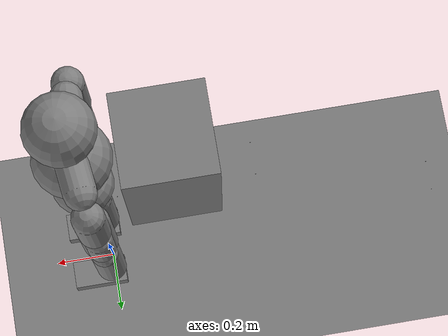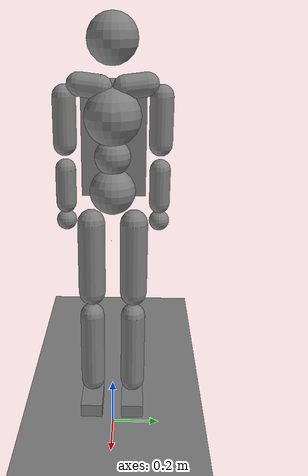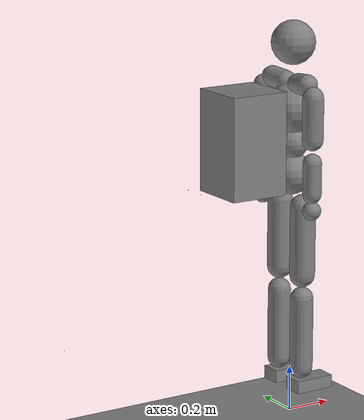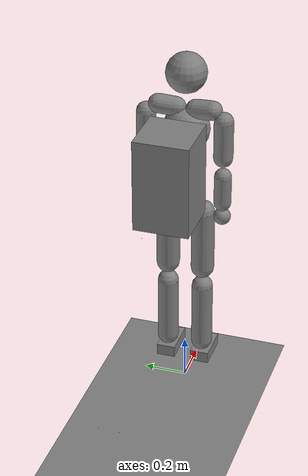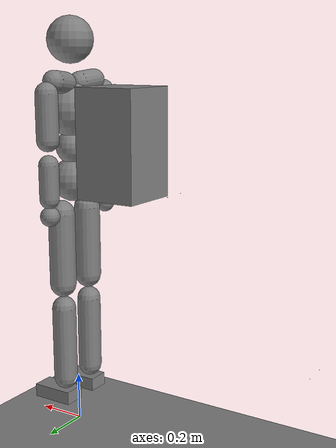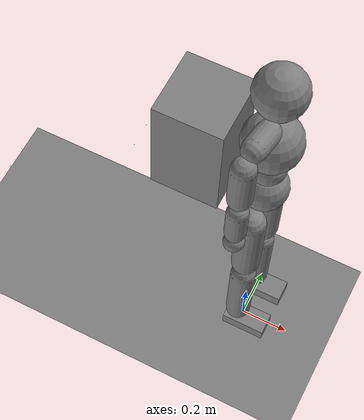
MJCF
<!-- 背后腿状SRL 在3的基础上增长 带角度(45) -->
<mujoco model="humanoid">

  <statistic extent="2" center="0 0 1"/>

  <option timestep="0.00555" />

  <default>
    <motor ctrlrange="-1 1" ctrllimited="true"/>
    <default class="body">
      <geom type="capsule" condim="1" friction="1.0 0.05 0.05" solimp=".9 .99 .003" solref=".015 1"/>
      <joint type="hinge" damping="0.1" stiffness="5" armature=".007" limited="true" solimplimit="0 .99 .01"/>
      <site size=".04" group="3"/>
      <default class="force-torque">
        <site type="box" size=".01 .01 .02" rgba="1 0 0 1" />
      </default>
      <default class="touch">
        <site type="capsule" rgba="0 0 1 .3"/>
      </default>
    </default>
  </default>

  <worldbody>
    <geom name="floor" type="plane" conaffinity="1" size="100 100 .2" />
    <body name="pelvis" pos="0 0 1" childclass="body">
      <freejoint name="root"/>
      <site name="root" class="force-torque"/>
      <geom name="pelvis" type="sphere" pos="0 0 0.07" size=".09" density="2226"/>
      <geom name="upper_waist" type="sphere" pos="0 0 0.205" size="0.07" density="2226"/>
      <site name="pelvis" class="touch" type="sphere" pos="0 0 0.07" size="0.091"/>
      <site name="upper_waist" class="touch" type="sphere" pos="0 0 0.205" size="0.071"/>

      <body name="torso" pos="0 0 0.236151">
        <light name="top" pos="0 0 2" mode="trackcom"/>
        <camera name="back" pos="-3 0 1" xyaxes="0 -1 0 1 0 2" mode="trackcom"/>
        <camera name="side" pos="0 -3 1" xyaxes="1 0 0 0 1 2" mode="trackcom"/>
        <joint name="abdomen_x" pos="0 0 0" axis="1 0 0" range="-60 60" stiffness="600" damping="60" armature=".025"/>
        <joint name="abdomen_y" pos="0 0 0" axis="0 1 0" range="-60 90" stiffness="600" damping="60" armature=".025"/>
        <joint name="abdomen_z" pos="0 0 0" axis="0 0 1" range="-50 50" stiffness="600" damping="60" armature=".025"/>
        <geom name="torso" type="sphere" pos="0 0 0.12" size="0.11" density="1794"/>
        <geom name="load" type="box" pos="-0.25 0 0" size="0.13 0.13 0.22" density="6000"  />
        <site name="torso" class="touch" type="sphere" pos="0 0 0.12" size="0.111"/>

        <geom name="right_clavicle" fromto="-0.0060125 -0.0457775 0.2287955 -0.016835 -0.128177 0.2376182" size=".045" density="1100"/>
        <geom name="left_clavicle" fromto="-0.0060125 0.0457775 0.2287955 -0.016835 0.128177 0.2376182" size=".045" density="1100"/>

        <body name="head" pos="0 0 0.223894">
          <joint name="neck_x" axis="1 0 0" range="-50 50" stiffness="50" damping="5" armature=".017"/>
          <joint name="neck_y" axis="0 1 0" range="-40 60" stiffness="50" damping="5" armature=".017"/>
          <joint name="neck_z" axis="0 0 1" range="-45 45" stiffness="50" damping="5" armature=".017"/>
          <geom name="head" type="sphere" pos="0 0 0.175" size="0.095" density="1081"/>
          <site name="head" class="touch" pos="0 0 0.175" type="sphere" size="0.103"/>
          <camera name="egocentric" pos=".103 0 0.175" xyaxes="0 -1 0 .1 0 1" fovy="80"/>
        </body>

        <body name="right_upper_arm" pos="-0.02405 -0.18311 0.24350">
          <joint name="right_shoulder_x" axis="1 0 0" range="-180 45" stiffness="200" damping="20" armature=".02"/>
          <joint name="right_shoulder_y" axis="0 1 0" range="-180 60" stiffness="200" damping="20" armature=".02"/>
          <joint name="right_shoulder_z" axis="0 0 1"  range="-90 90" stiffness="200" damping="20" armature=".02"/>
          <geom name="right_upper_arm" fromto="0 0 -0.05 0 0 -0.23" size=".045" density="982"/>
          <site name="right_upper_arm" class="touch" pos="0 0 -0.14" size="0.046 0.1" zaxis="0 0 1"/>

          <body name="right_lower_arm" pos="0 0 -0.274788">
            <joint name="right_elbow" axis="0 1 0" range="-160 0" stiffness="150" damping="15" armature=".015"/>
            <geom name="right_lower_arm" fromto="0 0 -0.0525 0 0 -0.1875" size="0.04" density="1056"/>
            <site name="right_lower_arm" class="touch" pos="0 0 -0.12" size="0.041 0.0685" zaxis="0 1 0"/>

            <body name="right_hand" pos="0 0 -0.258947">
              <geom name="right_hand" type="sphere" size=".04" density="1865"/>
              <site name="right_hand" class="touch" type="sphere" size=".041"/>
            </body>
          </body>
        </body>

        <body name="left_upper_arm" pos="-0.02405 0.18311 0.24350">
          <joint name="left_shoulder_x" axis="1 0 0" range="-45 180" stiffness="200" damping="20" armature=".02"/>
          <joint name="left_shoulder_y" axis="0 1 0" range="-180 60" stiffness="200" damping="20" armature=".02"/>
          <joint name="left_shoulder_z" axis="0 0 1"  range="-90 90" stiffness="200" damping="20" armature=".02"/>
          <geom name="left_upper_arm" fromto="0 0 -0.05 0 0 -0.23" size="0.045" density="982"/>
          <site name="left_upper_arm" class="touch" pos="0 0 -0.14" size="0.046 0.1" zaxis="0 0 1"/>

          <body name="left_lower_arm" pos="0 0 -0.274788">
            <joint name="left_elbow" axis="0 1 0" range="-160 0" stiffness="150" damping="15" armature=".015"/>
            <geom name="left_lower_arm" fromto="0 0 -0.0525 0 0 -0.1875" size="0.04" density="1056"/>
            <site name="left_lower_arm" class="touch" pos="0 0 -0.1" size="0.041 0.0685" zaxis="0 0 1"/>

            <body name="left_hand" pos="0 0 -0.258947">
              <geom name="left_hand" type="sphere" size=".04" density="1865"/>
              <site name="left_hand" class="touch" type="sphere" size=".041"/>
            </body>
          </body>
        </body>
      </body>

      <body name="right_thigh" pos="0 -0.084887 0">
        <site name="right_hip" class="force-torque"/>
        <joint name="right_hip_x" axis="1 0 0" range="-60 15" stiffness="300" damping="30" armature=".02"/>
        <joint name="right_hip_y" axis="0 1 0" range="-140 60" stiffness="300" damping="30" armature=".02"/>
        <joint name="right_hip_z" axis="0 0 1" range="-60 35" stiffness="300" damping="30" armature=".02"/>
        <geom name="right_thigh" fromto="0 0 -0.06 0 0 -0.36" size="0.055" density="1269"/>
        <site name="right_thigh" class="touch" pos="0 0 -0.21" size="0.056 0.301" zaxis="0 0 -1"/>

        <body name="right_shin" pos="0 0 -0.421546">
          <site name="right_knee" class="force-torque" pos="0 0 0"/>
          <joint name="right_knee" pos="0 0 0" axis="0 1 0" range="0 160" stiffness="300" damping="30" armature=".02"/>
          <geom name="right_shin" fromto="0 0 -0.045 0 0 -0.355"  size=".05" density="1014"/>
          <site name="right_shin" class="touch" pos="0 0 -0.2" size="0.051 0.156" zaxis="0 0 -1"/>

          <body name="right_foot" pos="0 0 -0.409870">
            <site name="right_ankle" class="force-torque"/>
            <joint name="right_ankle_x" pos="0 0 0" axis="1 0 0" range="-30 30" stiffness="200" damping="20" armature=".01"/>
            <joint name="right_ankle_y" pos="0 0 0" axis="0 1 0" range="-55 55" stiffness="200" damping="20" armature=".01"/>
            <joint name="right_ankle_z" pos="0 0 0" axis="0 0 1" range="-40 40" stiffness="200" damping="20" armature=".01"/>
            <geom name="right_foot" type="box" pos="0.045 0 -0.0225" size="0.0885 0.045 0.0275" density="1141"/>
            <site name="right_foot" class="touch" type="box" pos="0.045 0 -0.0225" size="0.0895 0.055 0.0285"/>
          </body>
        </body>
      </body>

      <body name="left_thigh" pos="0 0.084887 0">
        <site name="left_hip" class="force-torque"/>
        <joint name="left_hip_x" axis="1 0 0" range="-15 60" stiffness="300" damping="30" armature=".02"/>
        <joint name="left_hip_y" axis="0 1 0" range="-140 60" stiffness="300" damping="30" armature=".02"/>
        <joint name="left_hip_z" axis="0 0 1" range="-35 60" stiffness="300" damping="30" armature=".02"/>
        <geom name="left_thigh" fromto="0 0 -0.06 0 0 -0.36" size=".055" density="1269"/>
        <site name="left_thigh" class="touch" pos="0 0 -0.21" size="0.056 0.301" zaxis="0 0 -1"/>

        <body name="left_shin" pos="0 0 -0.421546">
          <site name="left_knee" class="force-torque" pos="0 0 .02"/>
          <joint name="left_knee" pos="0 0 0" axis="0 1 0" range="0 160" stiffness="300" damping="30" armature=".02"/>
          <geom name="left_shin" fromto="0 0 -0.045 0 0 -0.355"  size=".05" density="1014"/>
          <site name="left_shin" class="touch" pos="0 0 -0.2" size="0.051 0.156" zaxis="0 0 -1"/>

          <body name="left_foot" pos="0 0 -0.409870">
            <site name="left_ankle" class="force-torque"/>
            <joint name="left_ankle_x" pos="0 0 0" axis="1 0 0" range="-30 30" stiffness="200" damping="20" armature=".01"/>
            <joint name="left_ankle_y" pos="0 0 0" axis="0 1 0" range="-55 55" stiffness="200" damping="20" armature=".01"/>
            <joint name="left_ankle_z" pos="0 0 0" axis="0 0 1" range="-40 40" stiffness="200" damping="20" armature=".01"/>
            <geom name="left_foot" type="box" pos="0.045 0 -0.0225" size="0.0885 0.045 0.0275" density="1141"/>
            <site name="left_foot" class="touch" type="box" pos="0.045 0 -0.0225" size="0.0895 0.055 0.0285"/>
          </body>
        </body>
      </body>

      <!-- range="-70 70" stiffness="300" damping="30" armature=".02" -->
      <body name="SRL_root" pos="-.07 0 0.05" quat="0.0 0.0 0.0 1.0">
        <geom density="5" name="SRL_geom_root" pos="0 0 0" size="0.0001 0.0001 0.0001" type="box"/>

        <body name="SRL_leg2" pos="0.02 0.0475 0" quat="1.0 0.0 0.0 0.0">
          <geom density="5" fromto="0 0 0 0.001 0 0" name="SRL_geom_leg2" size="0.001" type="capsule"/>
          <joint axis="0 0 1" name="SRL_joint_joint11" pos="0 0 0" range="0 40" stiffness="300" damping="30" armature=".02"/>
          <joint axis="0 1 0" name="SRL_joint_joint12" pos="0 0 0" range="-5 70" stiffness="300" damping="30" armature=".02"/>
          <body name="SRL_shin11" pos="0.4 0 0" quat="0.92388 0.0 0.38268 0.0">
            <geom density="5" fromto="0 0 0 0.001 0 0" name="SRL_geom_shin11" size="0.001" type="capsule"/>
            <joint axis="0 1 0" name="SRL_joint_joint13" pos="0 0 0" range="-50 50" stiffness="300" damping="30" armature=".02"/>
            <body name="SRL_left_end" pos="0.8 0 0" quat="0.70711 0.0 -0.70711 0.0">
              <geom density="5" name="SRL_geom_shin12" pos="0.00 0 -0.045" size="0.001" type="sphere" friction="5.0 0.05 0.05"/>
              <joint axis="0 1 0" name="SRL_joint_joint14" pos="0 0 0" range="-5 5" stiffness="300" damping="30" armature=".02"/>
            </body>
          </body>
        </body>
        <body name="SRL_leg1" pos="0.02 -0.0475 0" quat="1.0 0.0 0.0 0.0">
          <geom density="5" fromto="0 0 0 0.001 0 0" name="SRL_geom_leg1" size="0.001" type="capsule"/>
          <joint axis="0 0 1" name="SRL_joint_joint01" pos="0 0 0" range="-40 0" stiffness="300" damping="30" armature=".02"/>
          <joint axis="0 1 0" name="SRL_joint_joint02" pos="0 0 0" range="-5 70" stiffness="300" damping="30" armature=".02"/>
          <body name="SRL_shin1" pos="0.4 0 0" quat="0.92388 0.0 0.38268 0.0">
            <geom density="5" fromto="0 0 0 0.001 0 0" name="SRL_geom_shin1" size="0.001" type="capsule"/>
            <joint axis="0 1 0" name="SRL_joint_joint1" pos="0 0 0" range="-50 50" stiffness="300" damping="30" armature=".02"/>
            <body name="SRL_right_end" pos="0.8 0 0" quat="0.70711 0.0 -0.70711 0.0">
              <geom density="5" name="SRL_geom_shin2" pos="0.00 0 -0.045" size="0.001" type="sphere" friction="5.0 0.05 0.05"/>
              <joint axis="0 1 0" name="SRL_joint_joint2" pos="0 0 0" range="-5 5" stiffness="300" damping="30" armature=".02"/>
            </body>
          </body>
        </body>
      </body>

    </body>

  </worldbody>

  <actuator>
    <motor name='abdomen_x'       gear='125' joint='abdomen_x'/>
    <motor name='abdomen_y'       gear='125' joint='abdomen_y'/>
    <motor name='abdomen_z'       gear='125' joint='abdomen_z'/>
    <motor name='neck_x'          gear='20' joint='neck_x'/>
    <motor name='neck_y'          gear='20' joint='neck_y'/>
    <motor name='neck_z'          gear='20' joint='neck_z'/>
    <motor name='right_shoulder_x' gear='70' joint='right_shoulder_x'/>
    <motor name='right_shoulder_y' gear='70' joint='right_shoulder_y'/>
    <motor name='right_shoulder_z' gear='70' joint='right_shoulder_z'/>
    <motor name='right_elbow'     gear='60' joint='right_elbow'/>
    <motor name='left_shoulder_x'  gear='70' joint='left_shoulder_x'/>
    <motor name='left_shoulder_y'  gear='70' joint='left_shoulder_y'/>
    <motor name='left_shoulder_z'  gear='70' joint='left_shoulder_z'/>
    <motor name='left_elbow'      gear='60' joint='left_elbow'/>
    <motor name='right_hip_x'     gear='125' joint='right_hip_x'/>
    <motor name='right_hip_z'     gear='125' joint='right_hip_z'/>
    <motor name='right_hip_y'     gear='125' joint='right_hip_y'/>
    <motor name='right_knee'      gear='100' joint='right_knee'/>
    <motor name='right_ankle_x'   gear='50' joint='right_ankle_x'/>
    <motor name='right_ankle_y'   gear='50' joint='right_ankle_y'/>
    <motor name='right_ankle_z'   gear='50' joint='right_ankle_z'/>
    <motor name='left_hip_x'      gear='125' joint='left_hip_x'/>
    <motor name='left_hip_z'      gear='125' joint='left_hip_z'/>
    <motor name='left_hip_y'      gear='125' joint='left_hip_y'/>
    <motor name='left_knee'       gear='100' joint='left_knee'/>
    <motor name='left_ankle_x'    gear='50' joint='left_ankle_x'/>
    <motor name='left_ankle_y'    gear='50' joint='left_ankle_y'/>
    <motor name='left_ankle_z'    gear='50' joint='left_ankle_z'/>
    <motor name='SRL_joint_joint11' gear='5' joint="SRL_joint_joint11"/>
    <motor name='SRL_joint_joint12' gear='5' joint="SRL_joint_joint12"/>
    <motor name='SRL_joint_joint13' gear='5' joint="SRL_joint_joint13"/>
    <motor name='SRL_joint_joint14' gear='5' joint="SRL_joint_joint14"/>
    <motor name='SRL_joint_joint01' gear='5' joint="SRL_joint_joint01"/>
    <motor name='SRL_joint_joint02' gear='5' joint="SRL_joint_joint02"/>
    <motor name='SRL_joint_joint1'  gear='5' joint="SRL_joint_joint1"/>
    <motor name='SRL_joint_joint2'  gear='5' joint="SRL_joint_joint2"/>

  </actuator>

  <sensor>
    <subtreelinvel name="pelvis_subtreelinvel" body="pelvis"/>
    <accelerometer name="root_accel"    site="root"/>
    <velocimeter name="root_vel"        site="root"/>
    <gyro name="root_gyro"              site="root"/>

    <force name="left_ankle_force"       site="left_ankle"/>
    <force name="right_ankle_force"      site="right_ankle"/>
    <force name="left_knee_force"        site="left_knee"/>
    <force name="right_knee_force"       site="right_knee"/>
    <force name="left_hip_force"         site="left_hip"/>
    <force name="right_hip_force"        site="right_hip"/>

    <torque name="left_ankle_torque"     site="left_ankle"/>
    <torque name="right_ankle_torque"    site="right_ankle"/>
    <torque name="left_knee_torque"      site="left_knee"/>
    <torque name="right_knee_torque"     site="right_knee"/>
    <torque name="left_hip_torque"       site="left_hip"/>
    <torque name="right_hip_torque"      site="right_hip"/>

    <touch name="pelvis_touch"           site="pelvis"/>
    <touch name="upper_waist_touch"      site="upper_waist"/>
    <touch name="torso_touch"            site="torso"/>
    <touch name="head_touch"             site="head"/>
    <touch name="right_upper_arm_touch"  site="right_upper_arm"/>
    <touch name="right_lower_arm_touch"  site="right_lower_arm"/>
    <touch name="right_hand_touch"       site="right_hand"/>
    <touch name="left_upper_arm_touch"   site="left_upper_arm"/>
    <touch name="left_lower_arm_touch"   site="left_lower_arm"/>
    <touch name="left_hand_touch"        site="left_hand"/>
    <touch name="right_thigh_touch"      site="right_thigh"/>
    <touch name="right_shin_touch"       site="right_shin"/>
    <touch name="right_foot_touch"       site="right_foot"/>
    <touch name="left_thigh_touch"       site="left_thigh"/>
    <touch name="left_shin_touch"        site="left_shin"/>
    <touch name="left_foot_touch"        site="left_foot"/>
  </sensor>

</mujoco>
